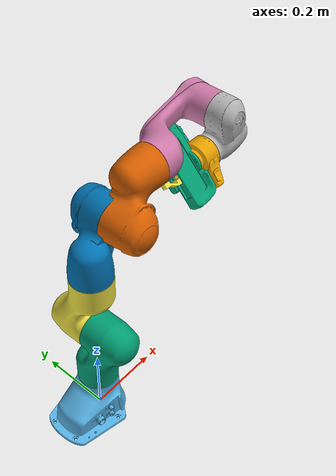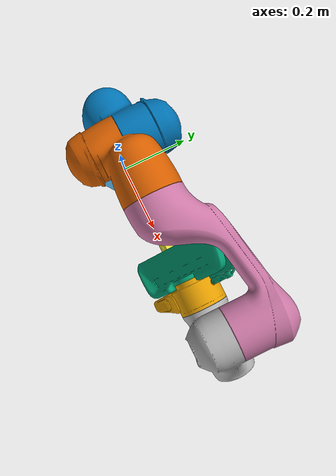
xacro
<?xml version="1.0" encoding="utf-8"?>
<!-- Franka robot with a camera attached -->
<robot xmlns:xacro="http://www.ros.org/wiki/xacro" name="panda_hand_camera">
  <!-- Include xacro files -->
  <xacro:include filename="$(find franka_description)/robots/panda_arm_hand_active_vision.xacro"/>
  <xacro:include filename="$(find active_vision)/desc/depth.xacro" />

  <link name="end_effector_link" />

  <joint name="end_joint" type="fixed">
    <parent link="panda_hand" />
    <child link="end_effector_link" />
    <origin xyz="0 0 0" rpy="0 0 0" />
  </joint>

  <xacro:camera_gazebo_sensor xyz="0.03 -0.0175 0.06" rpy="-1.57 -1.57 -1.57" parent="panda_hand" sensor_name="camera"/>
</robot>

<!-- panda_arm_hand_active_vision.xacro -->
<robot xmlns:xacro="http://www.ros.org/wiki/xacro" name="panda">
  <xacro:include filename="$(find franka_description)/robots/panda_arm_active_vision.xacro"/>
  <xacro:include filename="$(find franka_description)/robots/hand_active_vision.xacro"/>
  <xacro:panda_arm />
  <xacro:hand ns="panda" rpy="0 0 ${-pi/4}" connected_to="panda_link8"/>
</robot>

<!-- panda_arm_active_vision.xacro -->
<robot xmlns:xacro="http://www.ros.org/wiki/xacro" name="panda">
  <xacro:macro name="panda_arm" params="arm_id:='panda' description_pkg:='franka_description' connected_to:='' xyz:='0 0 0' rpy:='0 0 0'">

    <xacro:unless value="${not connected_to}">
      <joint name="${arm_id}_joint_${connected_to}" type="fixed">
        <parent link="${connected_to}"/>
        <child link="${arm_id}_link0"/>
        <origin rpy="${rpy}" xyz="${xyz}"/>
      </joint>
    </xacro:unless>

    <link name="world"/>

    <joint name="fixed" type="fixed">
      <origin rpy="0 0 0" xyz="0.00 0.00 0.00"/>
      <parent link="world"/>
      <child link="${arm_id}_link0"/>
    </joint>

    <link name="${arm_id}_link0">
      <visual>
        <geometry>
          <mesh filename="package://${description_pkg}/meshes/visual/link0.dae"/>
        </geometry>
      </visual>
      <collision>
        <geometry>
          <mesh filename="package://${description_pkg}/meshes/collision/link0.stl"/>
        </geometry>
      </collision>
      <inertial>
        <mass value="0.1" />
        <inertia ixx="0.03" iyy="0.03" izz="0.03" ixy="0.0" ixz="0.0" iyz="0.0" />
      </inertial>
    </link>

    <link name="${arm_id}_link1">
      <visual>
        <geometry>
          <mesh filename="package://${description_pkg}/meshes/visual/link1.dae"/>
        </geometry>
      </visual>
      <collision>
        <geometry>
          <mesh filename="package://${description_pkg}/meshes/collision/link1.stl"/>
        </geometry>
      </collision>
      <inertial>
        <mass value="0.1" />
        <inertia ixx="0.03" iyy="0.03" izz="0.03" ixy="0.0" ixz="0.0" iyz="0.0" />
      </inertial>
    </link>

    <joint name="${arm_id}_joint1" type="revolute">
      <safety_controller k_position="100.0" k_velocity="40.0" soft_lower_limit="-2.8973" soft_upper_limit="2.8973"/>
      <origin rpy="0 0 0" xyz="0 0 0.333"/>
      <parent link="${arm_id}_link0"/>
      <child link="${arm_id}_link1"/>
      <axis xyz="0 0 1"/>
      <limit effort="87" lower="-2.8973" upper="2.8973" velocity="2.1750"/>
    </joint>

    <link name="${arm_id}_link2">
      <visual>
        <geometry>
          <mesh filename="package://${description_pkg}/meshes/visual/link2.dae"/>
        </geometry>
      </visual>
      <collision>
        <geometry>
          <mesh filename="package://${description_pkg}/meshes/collision/link2.stl"/>
        </geometry>
      </collision>
      <inertial>
        <mass value="0.1" />
        <inertia ixx="0.03" iyy="0.03" izz="0.03" ixy="0.0" ixz="0.0" iyz="0.0" />
      </inertial>
    </link>

    <joint name="${arm_id}_joint2" type="revolute">
      <safety_controller k_position="100.0" k_velocity="40.0" soft_lower_limit="-1.7628" soft_upper_limit="1.7628"/>
      <origin rpy="${-pi/2} 0 0" xyz="0 0 0"/>
      <parent link="${arm_id}_link1"/>
      <child link="${arm_id}_link2"/>
      <axis xyz="0 0 1"/>
      <limit effort="87" lower="-1.7628" upper="1.7628" velocity="2.1750"/>
    </joint>

    <link name="${arm_id}_link3">
      <visual>
        <geometry>
          <mesh filename="package://${description_pkg}/meshes/visual/link3.dae"/>
        </geometry>
      </visual>
      <collision>
        <geometry>
          <mesh filename="package://${description_pkg}/meshes/collision/link3.stl"/>
        </geometry>
      </collision>
      <inertial>
        <mass value="0.1" />
        <inertia ixx="0.03" iyy="0.03" izz="0.03" ixy="0.0" ixz="0.0" iyz="0.0" />
      </inertial>
    </link>

    <joint name="${arm_id}_joint3" type="revolute">
      <safety_controller k_position="100.0" k_velocity="40.0" soft_lower_limit="-2.8973" soft_upper_limit="2.8973"/>
      <origin rpy="${pi/2} 0 0" xyz="0 -0.316 0"/>
      <parent link="${arm_id}_link2"/>
      <child link="${arm_id}_link3"/>
      <axis xyz="0 0 1"/>
      <limit effort="87" lower="-2.8973" upper="2.8973" velocity="2.1750"/>
    </joint>

    <link name="${arm_id}_link4">
      <visual>
        <geometry>
          <mesh filename="package://${description_pkg}/meshes/visual/link4.dae"/>
        </geometry>
      </visual>
      <collision>
        <geometry>
          <mesh filename="package://${description_pkg}/meshes/collision/link4.stl"/>
        </geometry>
      </collision>
      <inertial>
        <mass value="0.1" />
        <inertia ixx="0.03" iyy="0.03" izz="0.03" ixy="0.0" ixz="0.0" iyz="0.0" />
      </inertial>
    </link>

    <joint name="${arm_id}_joint4" type="revolute">
      <safety_controller k_position="100.0" k_velocity="40.0" soft_lower_limit="-3.0718" soft_upper_limit="-0.0698"/>
      <origin rpy="${pi/2} 0 0" xyz="0.0825 0 0"/>
      <parent link="${arm_id}_link3"/>
      <child link="${arm_id}_link4"/>
      <axis xyz="0 0 1"/>
      <limit effort="87" lower="-3.0718" upper="-0.0698" velocity="2.1750"/>
    </joint>

    <link name="${arm_id}_link5">
      <visual>
        <geometry>
          <mesh filename="package://${description_pkg}/meshes/visual/link5.dae"/>
        </geometry>
      </visual>
      <collision>
        <geometry>
          <mesh filename="package://${description_pkg}/meshes/collision/link5.stl"/>
        </geometry>
      </collision>
      <inertial>
        <mass value="0.1" />
        <inertia ixx="0.03" iyy="0.03" izz="0.03" ixy="0.0" ixz="0.0" iyz="0.0" />
      </inertial>
    </link>

    <joint name="${arm_id}_joint5" type="revolute">
      <safety_controller k_position="100.0" k_velocity="40.0" soft_lower_limit="-2.8973" soft_upper_limit="2.8973"/>
      <origin rpy="${-pi/2} 0 0" xyz="-0.0825 0.384 0"/>
      <parent link="${arm_id}_link4"/>
      <child link="${arm_id}_link5"/>
      <axis xyz="0 0 1"/>
      <limit effort="12" lower="-2.8973" upper="2.8973" velocity="2.6100"/>
    </joint>

    <link name="${arm_id}_link6">
      <visual>
        <geometry>
          <mesh filename="package://${description_pkg}/meshes/visual/link6.dae"/>
        </geometry>
      </visual>
      <collision>
        <geometry>
          <mesh filename="package://${description_pkg}/meshes/collision/link6.stl"/>
        </geometry>
      </collision>
      <inertial>
        <mass value="0.1" />
        <inertia ixx="0.03" iyy="0.03" izz="0.03" ixy="0.0" ixz="0.0" iyz="0.0" />
      </inertial>
    </link>

    <joint name="${arm_id}_joint6" type="revolute">
      <safety_controller k_position="100.0" k_velocity="40.0" soft_lower_limit="-0.0175" soft_upper_limit="3.7525"/>
      <origin rpy="${pi/2} 0 0" xyz="0 0 0"/>
      <parent link="${arm_id}_link5"/>
      <child link="${arm_id}_link6"/>
      <axis xyz="0 0 1"/>
      <limit effort="12" lower="-0.0175" upper="3.7525" velocity="2.6100"/>
    </joint>

    <link name="${arm_id}_link7">
      <visual>
        <geometry>
          <mesh filename="package://${description_pkg}/meshes/visual/link7.dae"/>
        </geometry>
      </visual>
      <collision>
        <geometry>
          <mesh filename="package://${description_pkg}/meshes/collision/link7.stl"/>
        </geometry>
      </collision>
      <inertial>
        <mass value="0.1" />
        <inertia ixx="0.03" iyy="0.03" izz="0.03" ixy="0.0" ixz="0.0" iyz="0.0" />
      </inertial>
    </link>

    <joint name="${arm_id}_joint7" type="revolute">
      <safety_controller k_position="100.0" k_velocity="40.0" soft_lower_limit="-2.8973" soft_upper_limit="2.8973"/>
      <origin rpy="${pi/2} 0 0" xyz="0.088 0 0"/>
      <parent link="${arm_id}_link6"/>
      <child link="${arm_id}_link7"/>
      <axis xyz="0 0 1"/>
      <limit effort="12" lower="-2.8973" upper="2.8973" velocity="2.6100"/>
    </joint>

    <gazebo reference="${arm_id}_joint7">
      <disableFixedJointLumping>true</disableFixedJointLumping>
      <sensor name="joint7_ft_sensor" type="force_torque">
        <force_torque>
          <frame>parent</frame>
          <measure_direction>parent_to_child</measure_direction>
        </force_torque>
      </sensor>
    </gazebo>
    <gazebo>
        <plugin name="ft_sensor" filename="libgazebo_ros_ft_sensor.so">
            <updateRate>50.0</updateRate>
            <topicName>${arm_id}_joint7_wrench</topicName>
            <jointName>${arm_id}_joint7</jointName>
        </plugin>
    </gazebo>

    <link name="${arm_id}_link8"/>

    <joint name="${arm_id}_joint8" type="fixed">
      <origin rpy="0 0 0" xyz="0 0 0.107"/>
      <parent link="${arm_id}_link7"/>
      <child link="${arm_id}_link8"/>
      <axis xyz="0 0 0"/>
    </joint>

    <!-- Transmissions of the robot arm - to be able to move each joint ============== -->
    <transmission name="tran1">
      <type>transmission_interface/SimpleTransmission</type>
      <joint name="${arm_id}_joint1">
        <hardwareInterface>hardware_interface/EffortJointInterface</hardwareInterface>
      </joint>
      <actuator name="motor1">
      	<hardwareInterface>hardware_interface/EffortJointInterface</hardwareInterface>
      	<mechanicalReduction>1</mechanicalReduction>
      </actuator>
    </transmission>

    <transmission name="tran2">
      <type>transmission_interface/SimpleTransmission</type>
      <joint name="${arm_id}_joint2">
        <hardwareInterface>hardware_interface/EffortJointInterface</hardwareInterface>
      </joint>
      <actuator name="motor2">
        <hardwareInterface>hardware_interface/EffortJointInterface</hardwareInterface>
        <mechanicalReduction>1</mechanicalReduction>
      </actuator>
    </transmission>

    <transmission name="tran3">
      <type>transmission_interface/SimpleTransmission</type>
      <joint name="${arm_id}_joint3">
        <hardwareInterface>hardware_interface/EffortJointInterface</hardwareInterface>
      </joint>
      <actuator name="motor3">
        <hardwareInterface>hardware_interface/EffortJointInterface</hardwareInterface>
        <mechanicalReduction>1</mechanicalReduction>
      </actuator>
    </transmission>

    <transmission name="tran4">
      <type>transmission_interface/SimpleTransmission</type>
      <joint name="${arm_id}_joint4">
        <hardwareInterface>hardware_interface/EffortJointInterface</hardwareInterface>
      </joint>
      <actuator name="motor4">
        <hardwareInterface>hardware_interface/EffortJointInterface</hardwareInterface>
        <mechanicalReduction>1</mechanicalReduction>
      </actuator>
    </transmission>

    <transmission name="tran5">
      <type>transmission_interface/SimpleTransmission</type>
      <joint name="${arm_id}_joint5">
        <hardwareInterface>hardware_interface/EffortJointInterface</hardwareInterface>
      </joint>
      <actuator name="motor5">
        <hardwareInterface>hardware_interface/EffortJointInterface</hardwareInterface>
        <mechanicalReduction>1</mechanicalReduction>
      </actuator>
    </transmission>

    <transmission name="tran6">
      <type>transmission_interface/SimpleTransmission</type>
      <joint name="${arm_id}_joint6">
        <hardwareInterface>hardware_interface/EffortJointInterface</hardwareInterface>
      </joint>
      <actuator name="motor6">
        <hardwareInterface>hardware_interface/EffortJointInterface</hardwareInterface>
        <mechanicalReduction>1</mechanicalReduction>
      </actuator>
    </transmission>

    <transmission name="tran7">
      <type>transmission_interface/SimpleTransmission</type>
      <joint name="${arm_id}_joint7">
        <hardwareInterface>hardware_interface/EffortJointInterface</hardwareInterface>
      </joint>
      <actuator name="motor7">
        <hardwareInterface>hardware_interface/EffortJointInterface</hardwareInterface>
        <mechanicalReduction>1</mechanicalReduction>
      </actuator>
    </transmission>
  </xacro:macro>

  <!-- Gazebo control plugin -->
  <gazebo>
    <plugin name="gazebo_ros_control" filename="libgazebo_ros_control.so">
      <robotNamespace>/panda</robotNamespace>
      <robotSimType>gazebo_ros_control/DefaultRobotHWSim</robotSimType>
    </plugin>
  </gazebo>

</robot>

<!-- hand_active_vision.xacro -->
<robot xmlns:xacro="http://www.ros.org/wiki/xacro" name="hand">
  <xacro:macro name="hand" params="connected_to:='' ns:='' rpy:='0 0 0' xyz:='0 0 0' ">
    <xacro:unless value="${connected_to == ''}">
      <joint name="${ns}_hand_joint" type="fixed">
        <parent link="${connected_to}"/>
        <child link="${ns}_hand"/>
        <origin xyz="${xyz}" rpy="${rpy}"/>
      </joint>
    </xacro:unless>
    <link name="${ns}_hand">
      <visual>
        <geometry>
          <mesh filename="package://franka_description/meshes/visual/hand.dae"/>
        </geometry>
      </visual>
      <visual>
        <origin xyz="0.03 0.0 0.07" rpy="-${pi/2} -${pi/2} -${pi/2}"/>
        <geometry>
          <mesh filename="package://active_vision/models/kinectAV/meshes/realsense.stl"/>
        </geometry>
      </visual>
      <visual>
        <origin xyz="0.018 0.0 0.007" rpy="0 0 0"/>
        <geometry>
          <mesh filename="package://active_vision/models/kinectAV/meshes/panda_realsenseD435_mount.stl"/>
        </geometry>
      </visual>
      <collision>
        <geometry>
          <mesh filename="package://franka_description/meshes/collision/hand.stl"/>
        </geometry>
      </collision>
	    <inertial>
        <mass value="0.1" />
        <inertia ixx="0.03" iyy="0.03" izz="0.03" ixy="0.0" ixz="0.0" iyz="0.0" />
      </inertial>
    </link>
    <link name="${ns}_leftfinger">
      <visual>
        <geometry>
          <mesh filename="package://franka_description/meshes/visual/finger.dae"/>
        </geometry>
      </visual>
      <collision>
        <geometry>
          <mesh filename="package://franka_description/meshes/collision/finger.stl"/>
        </geometry>
      </collision>
	    <inertial>
        <mass value="0.1" />
        <inertia ixx="0.03" iyy="0.03" izz="0.03" ixy="0.0" ixz="0.0" iyz="0.0" />
      </inertial>
    </link>
    <link name="${ns}_rightfinger">
      <visual>
        <origin xyz="0 0 0" rpy="0 0 ${pi}"/>
        <geometry>
          <mesh filename="package://franka_description/meshes/visual/finger.dae"/>
        </geometry>
      </visual>
      <collision>
        <origin xyz="0 0 0" rpy="0 0 ${pi}"/>
        <geometry>
          <mesh filename="package://franka_description/meshes/collision/finger.stl"/>
        </geometry>
      </collision>
	    <inertial>
        <mass value="0.1" />
        <inertia ixx="0.03" iyy="0.03" izz="0.03" ixy="0.0" ixz="0.0" iyz="0.0" />
      </inertial>
    </link>

  <gazebo reference="panda_leftfinger">
    <kp>1000000.0</kp>
    <kd>1.0</kd>
    <mu1>100000.0</mu1>
    <mu2>100000.0</mu2>
    <minDepth>0.001</minDepth>
    <maxVel>0.001</maxVel>
  </gazebo>
  <gazebo reference="panda_rightfinger">
    <kp>1000000.0</kp>
    <kd>1.0</kd>
    <mu1>100000.0</mu1>
    <mu2>100000.0</mu2>
    <minDepth>0.001</minDepth>
    <maxVel>0.001</maxVel>
  </gazebo>

  <gazebo>
   <plugin name="gazebo_grasp_fix" filename="libgazebo_grasp_fix.so">
      <arm>
         <arm_name>${connected_to}</arm_name>
         <palm_link> ${ns}_link7  </palm_link>
         <gripper_link> panda_leftfinger </gripper_link>
         <gripper_link> panda_rightfinger </gripper_link>
      </arm>
     <forces_angle_tolerance>100</forces_angle_tolerance>
     <update_rate>8</update_rate>
     <grip_count_threshold>8</grip_count_threshold>
     <max_grip_count>16</max_grip_count>
     <release_tolerance>0.001</release_tolerance>
     <disable_collisions_on_attach>false</disable_collisions_on_attach>
     <contact_topic>__default_topic__</contact_topic>
    </plugin>
  </gazebo>

  <joint name="${ns}_finger_joint1" type="prismatic">
    <parent link="${ns}_hand"/>
    <child link="${ns}_leftfinger"/>
    <origin xyz="0 0 0.0584" rpy="0 0 0"/>
    <axis xyz="0 1 0"/>
    <limit effort="1000" lower="0.0" upper="0.04" velocity="0.1"/>
  </joint>
  <joint name="${ns}_finger_joint2" type="prismatic">
    <parent link="${ns}_hand"/>
    <child link="${ns}_rightfinger"/>
    <origin xyz="0 0 0.0584" rpy="0 0 0"/>
    <axis xyz="0 -1 0"/>
    <limit effort="1000" lower="0.0" upper="0.04" velocity="0.1"/>
    <mimic joint="${ns}_finger_joint1" />
  </joint>

  <transmission name="f_t_1">
    <type>transmission_interface/SimpleTransmission</type>
    <joint name="${ns}_finger_joint1">
      <hardwareInterface>hardware_interface/EffortJointInterface</hardwareInterface>
    </joint>
    <actuator name="motor_finger_1">
    	<hardwareInterface>hardware_interface/EffortJointInterface</hardwareInterface>
    	<mechanicalReduction>1</mechanicalReduction>
    </actuator>
  </transmission>
  <transmission name="f_t_2">
    <type>transmission_interface/SimpleTransmission</type>
    <joint name="${ns}_finger_joint2">
      <hardwareInterface>hardware_interface/EffortJointInterface</hardwareInterface>
    </joint>
    <actuator name="motor_finger_2">
    	<hardwareInterface>hardware_interface/EffortJointInterface</hardwareInterface>
    	<mechanicalReduction>1</mechanicalReduction>
    </actuator>
  </transmission>

  </xacro:macro>
</robot>

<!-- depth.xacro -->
<robot xmlns:xacro="http://www.ros.org/wiki/xacro" name="camera">
  <xacro:macro name="camera_gazebo_sensor" params="xyz rpy parent sensor_name">

    <!-- joint/link data -->
    <!-- You can modify this to give the camera actual geometry -->
    <link name="camera_link">>
    </link>
    <link name="${sensor_name}_optical_link"></link>

    <joint name="robot_camera_joint" type="fixed">
      <origin xyz="${xyz}" rpy="${rpy}" />
      <parent link="${parent}" />
      <child link="camera_link" />
    </joint>
    <joint name="camera_optical_joint" type="fixed">
      <origin xyz="0 0 0" rpy="-1.57 0 -1.57" />
      <parent link="camera_link" />
      <child link="${sensor_name}_optical_link" />
    </joint>

    <!-- Sensor -->
    <gazebo reference="camera_link">

      <sensor type="depth" name="${sensor_name}">
	<always_on>1</always_on>
	<visualize>true</visualize>
	<update_rate>20</update_rate>
	<camera>
	  <horizontal_fov>1.047198</horizontal_fov>
	  <image>
	    <width>640</width>
	    <height>480</height>
	    <format>B8G8R8</format>  <!--Changed format since channels were inverted, to go back, change to R8G8B8-->
	  </image>
	  <clip>
	    <near>0.01</near>
	    <far>3</far>
	  </clip>
	</camera>

	<plugin name="camera_plugin" filename="libgazebo_ros_openni_kinect.so">
          <baseline>0.2</baseline>
          <alwaysOn>true</alwaysOn>
          <updateRate>0.0</updateRate>
          <cameraName>camera_ir</cameraName>
          <imageTopicName>/camera/color/image_raw</imageTopicName>
          <cameraInfoTopicName>/camera/color/camera_info</cameraInfoTopicName>
          <depthImageTopicName>/camera/depth/image_raw</depthImageTopicName>
          <depthImageCameraInfoTopicName>/camera/depth/camera_info</depthImageCameraInfoTopicName>
          <pointCloudTopicName>/camera/depth/points</pointCloudTopicName>
          <frameName>camera_optical_link</frameName>
          <pointCloudCutoff>0.10</pointCloudCutoff>
          <pointCloudCutoffMax>3.0</pointCloudCutoffMax>
          <distortionK1>0</distortionK1>
          <distortionK2>0</distortionK2>
          <distortionK3>0</distortionK3>
          <distortionT1>0</distortionT1>
          <distortionT2>0</distortionT2>
          <CxPrime>0</CxPrime>
          <Cx>0</Cx>
          <Cy>0</Cy>
          <focalLength>0</focalLength>
          <hackBaseline>0</hackBaseline>
        </plugin>
      </sensor>
    </gazebo>

  </xacro:macro>
</robot>
